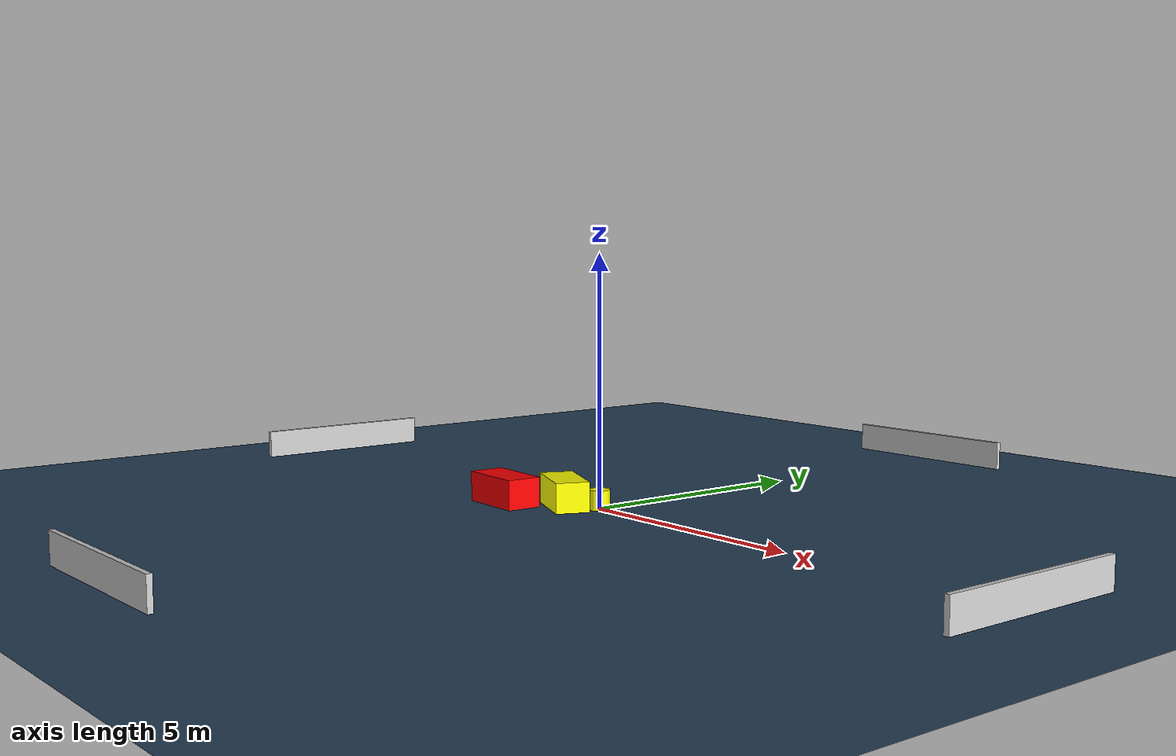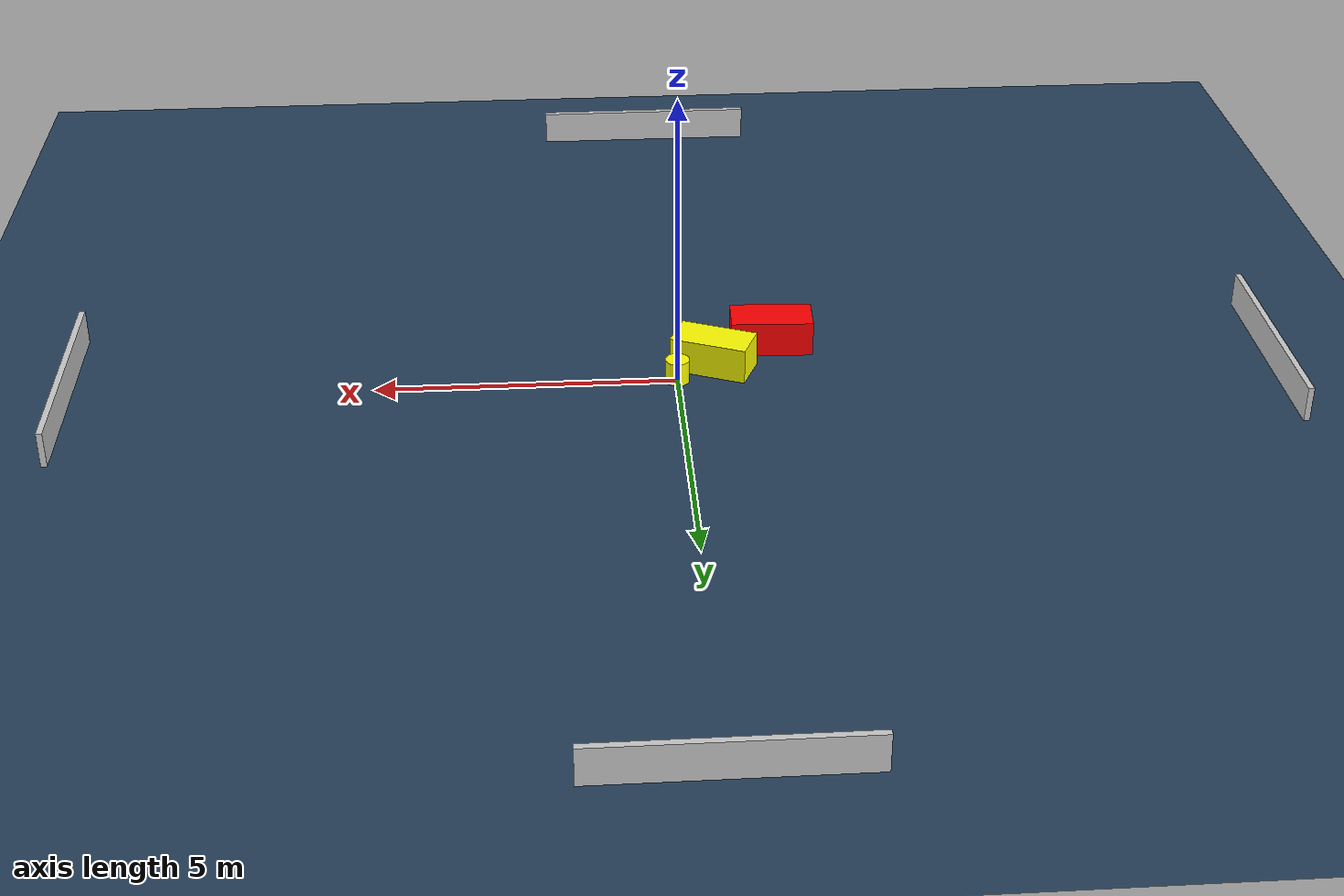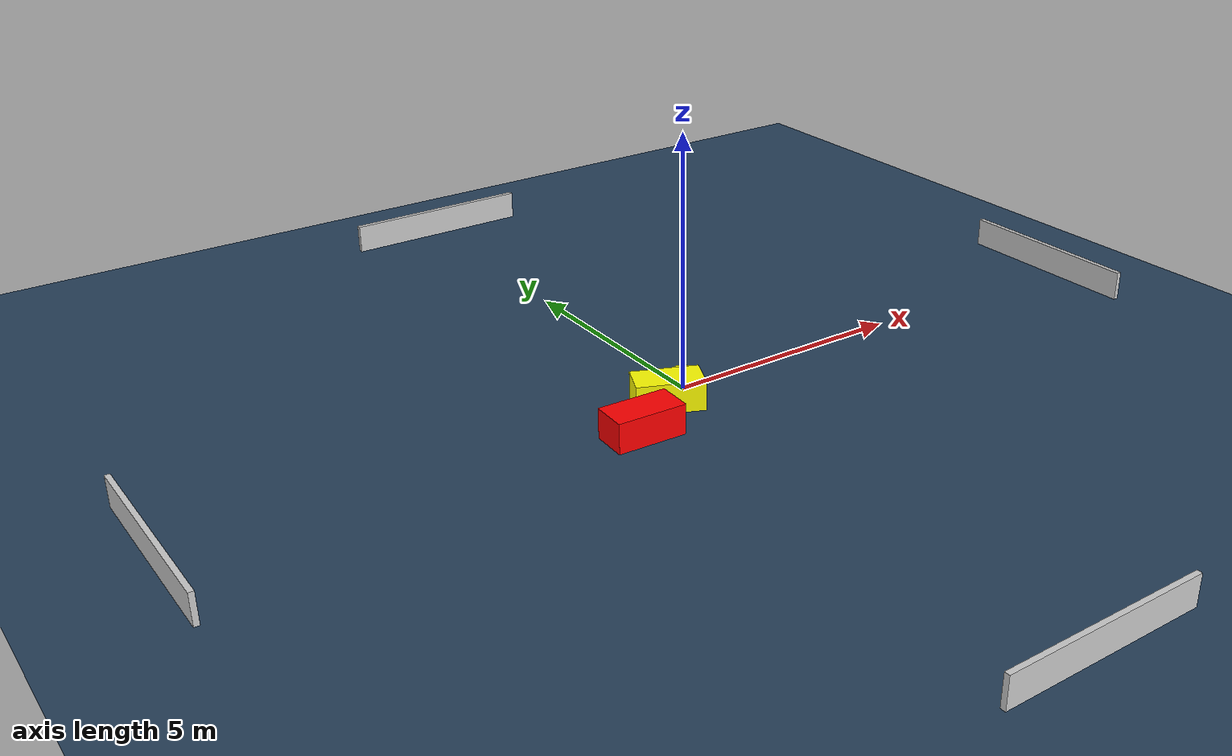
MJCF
<?xml version="1.0" ?>
<mujoco model="generated_environment">
  <option timestep="0.01" integrator="RK4" cone="elliptic"/>
  <default>
    <geom density="1"/>
  </default>
  <asset>
    <texture builtin="gradient" height="3072" name="skybox" rgb1="0.3 0.5 0.7" rgb2="0 0 0" type="skybox" width="512"/>
    <texture builtin="checker" height="300" name="groundplane" rgb1="0.2 0.3 0.4" rgb2="0.1 0.2 0.3" type="2d" width="300"/>
    <material name="groundplane" reflectance="0.2" texrepeat="5 5" texture="groundplane"/>
  </asset>
  <worldbody>
    <light dir="0 0 -1" directional="true" pos="0 0 1.5"/>
    <geom condim="3" friction="0.5 0.005 0.001" material="groundplane" name="floor" pos="0 0 0" size="0 0 0.05" type="plane"/>
    <body name="walls">
      <geom name="wall_1" condim="4" pos="-10.0 0.0 0.3" rgba="0.800000011920929 0.800000011920929 0.800000011920929 1.0" size="0.05 2.0 0.3" type="box"/>
      <geom name="wall_2" condim="4" pos="10.0 0.0 0.3" rgba="0.800000011920929 0.800000011920929 0.800000011920929 1.0" size="0.05 2.0 0.3" type="box"/>
      <geom name="wall_3" condim="4" pos="0.0 -10.0 0.3" rgba="0.800000011920929 0.800000011920929 0.800000011920929 1.0" size="2.0 0.05 0.3" type="box"/>
      <geom name="wall_4" condim="4" pos="0.0 10.0 0.3" rgba="0.800000011920929 0.800000011920929 0.800000011920929 1.0" size="2.0 0.05 0.3" type="box"/>
    </body>
    <body name="robot">
      <joint name="joint_x" type="slide" pos="0 0 0" axis="1 0 0"/>
      <joint name="joint_y" type="slide" pos="0 0 0" axis="0 1 0"/>
      <geom name="robot" type="cylinder" pos="0.0 0.0 0.2" size="0.2 0.2 0.0" mass="5.0" friction="1.0 0.005 0.0001" condim="4" rgba="1.0 1.0 0.0 1.0"/>
    </body>
    <body name="obstacle_1_movable">
      <geom name="obstacle_1_movable" condim="4" pos="-0.6303753188758291 -0.39160007216256015 0.3" euler="0 0 336.7707872644346" friction="0.0 0.005 0.001" rgba="1.0 1.0 0.0 1.0" size="0.653410225016455 0.3379374217025516 0.3" type="box" mass="0.1"/>
      <joint type="free"/>
    </body>
    <body name="obstacle_2_static">
      <geom name="obstacle_2_static" condim="4" pos="-1.666595163956145 -1.0864861424997887 0.3" euler="0 0 357.6136851666403" friction="0.0 0.005 0.001" rgba="1.0 0.0 0.0 1.0" size="0.6907328035533575 0.35752047522319547 0.3" type="box"/>
    </body>
  </worldbody>
  <actuator>
    <motor name="actuator_x" joint="joint_x" gear="1" ctrlrange="-1 1"/>
    <motor name="actuator_y" joint="joint_y" gear="1" ctrlrange="-1 1"/>
  </actuator>
</mujoco>
